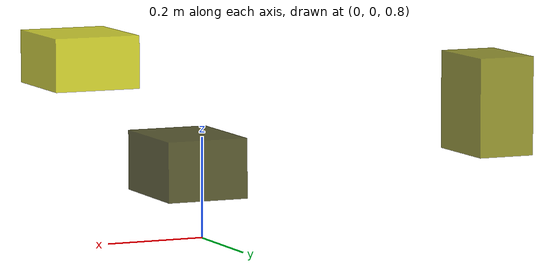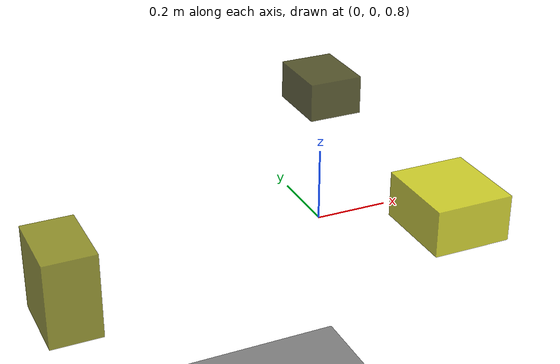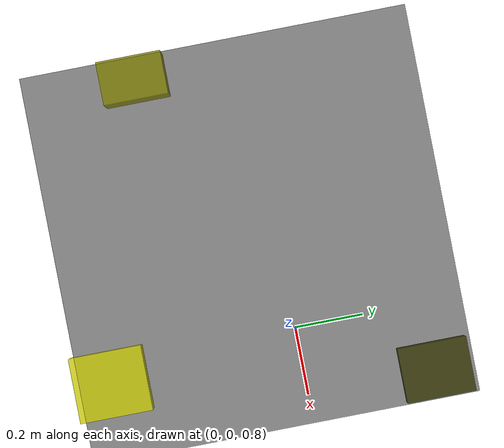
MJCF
<?xml version="1.0"?>
<mujoco model="obstacle_scene">
  <compiler angle="radian" coordinate="local"/>
  <option timestep="0.001" gravity="0 0 -9.81"/>

  <asset>
    <material name="obstacle_mat" rgba="0.8 0.8 0.0 0.8"/>
    <material name="ground_mat" rgba="0.5 0.5 0.5 1"/>
  </asset>

  <worldbody>
    <!-- Ground plane -->
    <geom name="ground" type="plane" size="3 3 0.1" material="ground_mat"/>

    <!-- Obstacles -->
    <body name="obstacle_0" pos="0.187595 0.372356 1.005254">
      <geom name="obs_0" type="box" size="0.078370 0.099051 0.056147" rgba="0.2 0.2 0.0 0.8"/>
    </body>
    <body name="obstacle_1" pos="-0.792539 -0.320793 0.992570">
      <geom name="obs_1" type="box" size="0.061893 0.092934 0.104953" rgba="0.5 0.5 0.0 0.8"/>
    </body>
    <body name="obstacle_2" pos="0.047462 -0.541778 1.101224">
      <geom name="obs_2" type="box" size="0.092256 0.103599 0.055248" rgba="0.8 0.8 0.0 0.8"/>
    </body>
  </worldbody>
</mujoco>
